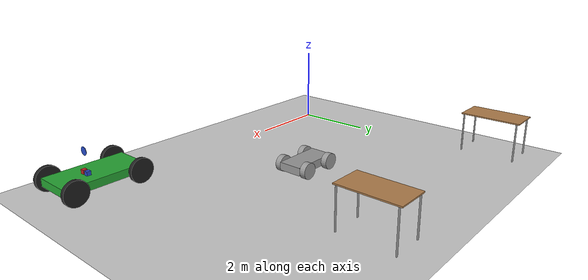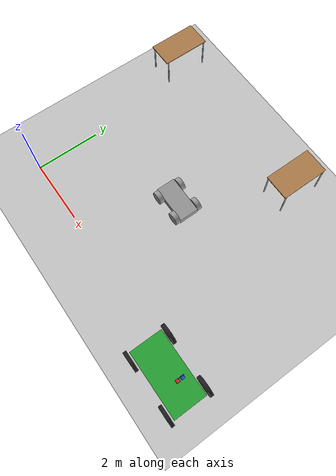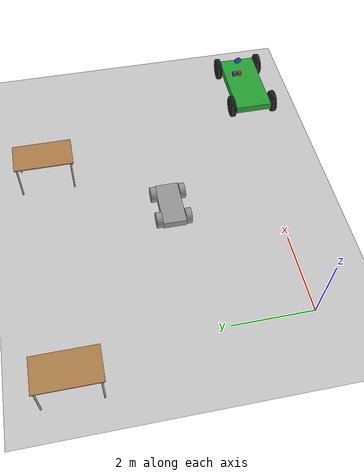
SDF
<sdf version="1.6">
 <world name="default">
  <model name="ground_plane">
   <static>1</static>
   <link name="link">
    <collision name="collision">
     <geometry><plane><normal>0 0 1</normal><size>100 100</size></plane></geometry>
     <surface>
      <contact><collide_bitmask>65535</collide_bitmask></contact>
      <friction><ode><mu>100</mu><mu2>50</mu2></ode></friction>
     </surface>
    </collision>
    <visual name="visual">
     <cast_shadows>0</cast_shadows>
     <geometry><plane><normal>0 0 1</normal><size>100 100</size></plane></geometry>
     <material>
      <script><uri>file://media/materials/scripts/gazebo.material</uri><name>Gazebo/Grey</name></script>
     </material>
    </visual>
   </link>
  </model>
  <model name="table">
   <static>1</static>
   <link name="link">
    <collision name="surface">
     <pose>0 0 1 0 -0 0</pose>
     <geometry><box><size>1.5 0.8 0.03</size></box></geometry>
     <surface><friction><ode><mu>0.6</mu><mu2>0.6</mu2></ode></friction></surface>
    </collision>
    <visual name="visual1">
     <pose>0 0 1 0 -0 0</pose>
     <geometry><box><size>1.5 0.8 0.03</size></box></geometry>
     <material>
      <script><uri>file://media/materials/scripts/gazebo.material</uri><name>Gazebo/Wood</name></script>
     </material>
    </visual>
    <collision name="front_left_leg">
     <pose>0.68 0.38 0.5 0 -0 0</pose>
     <geometry><cylinder><radius>0.02</radius><length>1</length></cylinder></geometry>
    </collision>
    <visual name="front_left_leg">
     <pose>0.68 0.38 0.5 0 -0 0</pose>
     <geometry><cylinder><radius>0.02</radius><length>1</length></cylinder></geometry>
     <material>
      <script><uri>file://media/materials/scripts/gazebo.material</uri><name>Gazebo/Grey</name></script>
     </material>
    </visual>
    <collision name="front_right_leg">
     <pose>0.68 -0.38 0.5 0 -0 0</pose>
     <geometry><cylinder><radius>0.02</radius><length>1</length></cylinder></geometry>
    </collision>
    <visual name="front_right_leg">
     <pose>0.68 -0.38 0.5 0 -0 0</pose>
     <geometry><cylinder><radius>0.02</radius><length>1</length></cylinder></geometry>
     <material>
      <script><uri>file://media/materials/scripts/gazebo.material</uri><name>Gazebo/Grey</name></script>
     </material>
    </visual>
    <collision name="back_right_leg">
     <pose>-0.68 -0.38 0.5 0 -0 0</pose>
     <geometry><cylinder><radius>0.02</radius><length>1</length></cylinder></geometry>
    </collision>
    <visual name="back_right_leg">
     <pose>-0.68 -0.38 0.5 0 -0 0</pose>
     <geometry><cylinder><radius>0.02</radius><length>1</length></cylinder></geometry>
     <material>
      <script><uri>file://media/materials/scripts/gazebo.material</uri><name>Gazebo/Grey</name></script>
     </material>
    </visual>
    <collision name="back_left_leg">
     <pose>-0.68 0.38 0.5 0 -0 0</pose>
     <geometry><cylinder><radius>0.02</radius><length>1</length></cylinder></geometry>
    </collision>
    <visual name="back_left_leg">
     <pose>-0.68 0.38 0.5 0 -0 0</pose>
     <geometry><cylinder><radius>0.02</radius><length>1</length></cylinder></geometry>
     <material>
      <script><uri>file://media/materials/scripts/gazebo.material</uri><name>Gazebo/Grey</name></script>
     </material>
    </visual>
   </link>
   <pose>4.98532 5.74806 0 0 -0 1.5708</pose>
  </model>
  <model name="table_0">
   <static>1</static>
   <link name="link">
    <collision name="surface">
     <pose>0 0 1 0 -0 0</pose>
     <geometry><box><size>1.5 0.8 0.03</size></box></geometry>
     <surface><friction><ode><mu>0.6</mu><mu2>0.6</mu2></ode></friction></surface>
    </collision>
    <visual name="visual1">
     <pose>0 0 1 0 -0 0</pose>
     <geometry><box><size>1.5 0.8 0.03</size></box></geometry>
     <material>
      <script><uri>file://media/materials/scripts/gazebo.material</uri><name>Gazebo/Wood</name></script>
     </material>
    </visual>
    <collision name="front_left_leg">
     <pose>0.68 0.38 0.5 0 -0 0</pose>
     <geometry><cylinder><radius>0.02</radius><length>1</length></cylinder></geometry>
    </collision>
    <visual name="front_left_leg">
     <pose>0.68 0.38 0.5 0 -0 0</pose>
     <geometry><cylinder><radius>0.02</radius><length>1</length></cylinder></geometry>
     <material>
      <script><uri>file://media/materials/scripts/gazebo.material</uri><name>Gazebo/Grey</name></script>
     </material>
    </visual>
    <collision name="front_right_leg">
     <pose>0.68 -0.38 0.5 0 -0 0</pose>
     <geometry><cylinder><radius>0.02</radius><length>1</length></cylinder></geometry>
    </collision>
    <visual name="front_right_leg">
     <pose>0.68 -0.38 0.5 0 -0 0</pose>
     <geometry><cylinder><radius>0.02</radius><length>1</length></cylinder></geometry>
     <material>
      <script><uri>file://media/materials/scripts/gazebo.material</uri><name>Gazebo/Grey</name></script>
     </material>
    </visual>
    <collision name="back_right_leg">
     <pose>-0.68 -0.38 0.5 0 -0 0</pose>
     <geometry><cylinder><radius>0.02</radius><length>1</length></cylinder></geometry>
    </collision>
    <visual name="back_right_leg">
     <pose>-0.68 -0.38 0.5 0 -0 0</pose>
     <geometry><cylinder><radius>0.02</radius><length>1</length></cylinder></geometry>
     <material>
      <script><uri>file://media/materials/scripts/gazebo.material</uri><name>Gazebo/Grey</name></script>
     </material>
    </visual>
    <collision name="back_left_leg">
     <pose>-0.68 0.38 0.5 0 -0 0</pose>
     <geometry><cylinder><radius>0.02</radius><length>1</length></cylinder></geometry>
    </collision>
    <visual name="back_left_leg">
     <pose>-0.68 0.38 0.5 0 -0 0</pose>
     <geometry><cylinder><radius>0.02</radius><length>1</length></cylinder></geometry>
     <material>
      <script><uri>file://media/materials/scripts/gazebo.material</uri><name>Gazebo/Grey</name></script>
     </material>
    </visual>
   </link>
   <pose>-0.681354 5.72212 0 0 -0 1.5708</pose>
  </model>
  <model name="robot_0">
   <link name="link_3">
    <pose>0 0 0.2 0 -0 0</pose>
    <inertial>
     <mass>1</mass>
     <inertia>
      <ixx>0.166667</ixx>
      <ixy>0</ixy>
      <ixz>0</ixz>
      <iyy>0.166667</iyy>
      <iyz>0</iyz>
      <izz>0.166667</izz>
     </inertia>
    </inertial>
    <visual name="visual">
     <geometry><box><size>1.2 0.6 0.2</size></box></geometry>
     <material>
      <lighting>1</lighting>
      <script><uri>file://media/materials/scripts/gazebo.material</uri><name>Gazebo/Grey</name></script>
      <shader type="pixel"><normal_map>__default__</normal_map></shader>
      <ambient>0.3 0.3 0.3 1</ambient>
      <diffuse>0.7 0.7 0.7 1</diffuse>
      <specular>0.01 0.01 0.01 1</specular>
      <emissive>0 0 0 1</emissive>
     </material>
    </visual>
    <collision name="collision">
     <geometry><box><size>1.2 0.6 0.2</size></box></geometry>
     <surface>
      <friction>
       <ode><mu>1</mu><mu2>1</mu2><fdir1>0 0 0</fdir1><slip1>0</slip1><slip2>0</slip2></ode>
       <torsional>
        <coefficient>1</coefficient>
        <patch_radius>0</patch_radius>
        <surface_radius>0</surface_radius>
        <use_patch_radius>1</use_patch_radius>
        <ode><slip>0</slip></ode>
       </torsional>
      </friction>
      <bounce><restitution_coefficient>0</restitution_coefficient><threshold>1e+06</threshold></bounce>
      <contact>
       <collide_without_contact>0</collide_without_contact>
       <collide_without_contact_bitmask>1</collide_without_contact_bitmask>
       <collide_bitmask>1</collide_bitmask>
       <ode>
        <soft_cfm>0</soft_cfm>
        <soft_erp>0.2</soft_erp>
        <kp>1e+13</kp>
        <kd>1</kd>
        <max_vel>0.01</max_vel>
        <min_depth>0</min_depth>
       </ode>
       <bullet>
        <split_impulse>1</split_impulse>
        <split_impulse_penetration_threshold>-0.01</split_impulse_penetration_threshold>
        <soft_cfm>0</soft_cfm>
        <soft_erp>0.2</soft_erp>
        <kp>1e+13</kp>
        <kd>1</kd>
       </bullet>
      </contact>
     </surface>
    </collision>
   </link>
   <link name="link_5_clone">
    <pose>-0.4 0.375001 0.2 1.5708 -0 0</pose>
    <inertial>
     <mass>1</mass>
     <inertia><ixx>0.145833</ixx><ixy>0</ixy><ixz>0</ixz><iyy>0.145833</iyy><iyz>0</iyz><izz>0.125</izz></inertia>
    </inertial>
    <visual name="visual">
     <geometry><cylinder><radius>0.2</radius><length>0.15</length></cylinder></geometry>
     <material>
      <lighting>1</lighting>
      <script><uri>file://media/materials/scripts/gazebo.material</uri><name>Gazebo/Grey</name></script>
      <shader type="pixel"><normal_map>__default__</normal_map></shader>
      <ambient>0.3 0.3 0.3 1</ambient>
      <diffuse>0.7 0.7 0.7 1</diffuse>
      <specular>0.01 0.01 0.01 1</specular>
      <emissive>0 0 0 1</emissive>
     </material>
    </visual>
    <collision name="collision">
     <geometry><cylinder><radius>0.2</radius><length>0.15</length></cylinder></geometry>
     <surface>
      <friction>
       <ode><mu>1</mu><mu2>1</mu2><fdir1>0 0 0</fdir1><slip1>0</slip1><slip2>0</slip2></ode>
       <torsional>
        <coefficient>1</coefficient>
        <patch_radius>0</patch_radius>
        <surface_radius>0</surface_radius>
        <use_patch_radius>1</use_patch_radius>
        <ode><slip>0</slip></ode>
       </torsional>
      </friction>
      <bounce><restitution_coefficient>0</restitution_coefficient><threshold>1e+06</threshold></bounce>
      <contact>
       <collide_without_contact>0</collide_without_contact>
       <collide_without_contact_bitmask>1</collide_without_contact_bitmask>
       <collide_bitmask>1</collide_bitmask>
       <ode>
        <soft_cfm>0</soft_cfm>
        <soft_erp>0.2</soft_erp>
        <kp>1e+13</kp>
        <kd>1</kd>
        <max_vel>0.01</max_vel>
        <min_depth>0</min_depth>
       </ode>
       <bullet>
        <split_impulse>1</split_impulse>
        <split_impulse_penetration_threshold>-0.01</split_impulse_penetration_threshold>
        <soft_cfm>0</soft_cfm>
        <soft_erp>0.2</soft_erp>
        <kp>1e+13</kp>
        <kd>1</kd>
       </bullet>
      </contact>
     </surface>
    </collision>
   </link>
   <link name="link_5_clone_0">
    <pose>-0.4 -0.375001 0.2 1.5708 -0 0</pose>
    <inertial>
     <mass>1</mass>
     <inertia><ixx>0.145833</ixx><ixy>0</ixy><ixz>0</ixz><iyy>0.145833</iyy><iyz>0</iyz><izz>0.125</izz></inertia>
    </inertial>
    <visual name="visual">
     <geometry><cylinder><radius>0.2</radius><length>0.15</length></cylinder></geometry>
     <material>
      <lighting>1</lighting>
      <script><uri>file://media/materials/scripts/gazebo.material</uri><name>Gazebo/Grey</name></script>
      <shader type="pixel"><normal_map>__default__</normal_map></shader>
      <ambient>0.3 0.3 0.3 1</ambient>
      <diffuse>0.7 0.7 0.7 1</diffuse>
      <specular>0.01 0.01 0.01 1</specular>
      <emissive>0 0 0 1</emissive>
     </material>
    </visual>
    <collision name="collision">
     <geometry><cylinder><radius>0.2</radius><length>0.15</length></cylinder></geometry>
     <surface>
      <friction>
       <ode><mu>1</mu><mu2>1</mu2><fdir1>0 0 0</fdir1><slip1>0</slip1><slip2>0</slip2></ode>
       <torsional>
        <coefficient>1</coefficient>
        <patch_radius>0</patch_radius>
        <surface_radius>0</surface_radius>
        <use_patch_radius>1</use_patch_radius>
        <ode><slip>0</slip></ode>
       </torsional>
      </friction>
      <bounce><restitution_coefficient>0</restitution_coefficient><threshold>1e+06</threshold></bounce>
      <contact>
       <collide_without_contact>0</collide_without_contact>
       <collide_without_contact_bitmask>1</collide_without_contact_bitmask>
       <collide_bitmask>1</collide_bitmask>
       <ode>
        <soft_cfm>0</soft_cfm>
        <soft_erp>0.2</soft_erp>
        <kp>1e+13</kp>
        <kd>1</kd>
        <max_vel>0.01</max_vel>
        <min_depth>0</min_depth>
       </ode>
       <bullet>
        <split_impulse>1</split_impulse>
        <split_impulse_penetration_threshold>-0.01</split_impulse_penetration_threshold>
        <soft_cfm>0</soft_cfm>
        <soft_erp>0.2</soft_erp>
        <kp>1e+13</kp>
        <kd>1</kd>
       </bullet>
      </contact>
     </surface>
    </collision>
   </link>
   <link name="link_5_clone_1">
    <pose>0.4 0.375001 0.2 1.5708 -0 0</pose>
    <inertial>
     <mass>1</mass>
     <inertia><ixx>0.145833</ixx><ixy>0</ixy><ixz>0</ixz><iyy>0.145833</iyy><iyz>0</iyz><izz>0.125</izz></inertia>
    </inertial>
    <visual name="visual">
     <geometry><cylinder><radius>0.2</radius><length>0.15</length></cylinder></geometry>
     <material>
      <lighting>1</lighting>
      <script><uri>file://media/materials/scripts/gazebo.material</uri><name>Gazebo/Grey</name></script>
      <shader type="pixel"><normal_map>__default__</normal_map></shader>
      <ambient>0.3 0.3 0.3 1</ambient>
      <diffuse>0.7 0.7 0.7 1</diffuse>
      <specular>0.01 0.01 0.01 1</specular>
      <emissive>0 0 0 1</emissive>
     </material>
    </visual>
    <collision name="collision">
     <geometry><cylinder><radius>0.2</radius><length>0.15</length></cylinder></geometry>
     <surface>
      <friction>
       <ode><mu>1</mu><mu2>1</mu2><fdir1>0 0 0</fdir1><slip1>0</slip1><slip2>0</slip2></ode>
       <torsional>
        <coefficient>1</coefficient>
        <patch_radius>0</patch_radius>
        <surface_radius>0</surface_radius>
        <use_patch_radius>1</use_patch_radius>
        <ode><slip>0</slip></ode>
       </torsional>
      </friction>
      <bounce><restitution_coefficient>0</restitution_coefficient><threshold>1e+06</threshold></bounce>
      <contact>
       <collide_without_contact>0</collide_without_contact>
       <collide_without_contact_bitmask>1</collide_without_contact_bitmask>
       <collide_bitmask>1</collide_bitmask>
       <ode>
        <soft_cfm>0</soft_cfm>
        <soft_erp>0.2</soft_erp>
        <kp>1e+13</kp>
        <kd>1</kd>
        <max_vel>0.01</max_vel>
        <min_depth>0</min_depth>
       </ode>
       <bullet>
        <split_impulse>1</split_impulse>
        <split_impulse_penetration_threshold>-0.01</split_impulse_penetration_threshold>
        <soft_cfm>0</soft_cfm>
        <soft_erp>0.2</soft_erp>
        <kp>1e+13</kp>
        <kd>1</kd>
       </bullet>
      </contact>
     </surface>
    </collision>
   </link>
   <link name="link_5_clone_2">
    <pose>0.4 -0.375001 0.2 1.5708 -0 0</pose>
    <inertial>
     <mass>1</mass>
     <inertia><ixx>0.145833</ixx><ixy>0</ixy><ixz>0</ixz><iyy>0.145833</iyy><iyz>0</iyz><izz>0.125</izz></inertia>
    </inertial>
    <visual name="visual">
     <geometry><cylinder><radius>0.2</radius><length>0.15</length></cylinder></geometry>
     <material>
      <lighting>1</lighting>
      <script><uri>file://media/materials/scripts/gazebo.material</uri><name>Gazebo/Grey</name></script>
      <shader type="pixel"><normal_map>__default__</normal_map></shader>
      <ambient>0.3 0.3 0.3 1</ambient>
      <diffuse>0.7 0.7 0.7 1</diffuse>
      <specular>0.01 0.01 0.01 1</specular>
      <emissive>0 0 0 1</emissive>
     </material>
    </visual>
    <collision name="collision">
     <geometry><cylinder><radius>0.2</radius><length>0.15</length></cylinder></geometry>
     <surface>
      <friction>
       <ode><mu>1</mu><mu2>1</mu2><fdir1>0 0 0</fdir1><slip1>0</slip1><slip2>0</slip2></ode>
       <torsional>
        <coefficient>1</coefficient>
        <patch_radius>0</patch_radius>
        <surface_radius>0</surface_radius>
        <use_patch_radius>1</use_patch_radius>
        <ode><slip>0</slip></ode>
       </torsional>
      </friction>
      <bounce><restitution_coefficient>0</restitution_coefficient><threshold>1e+06</threshold></bounce>
      <contact>
       <collide_without_contact>0</collide_without_contact>
       <collide_without_contact_bitmask>1</collide_without_contact_bitmask>
       <collide_bitmask>1</collide_bitmask>
       <ode>
        <soft_cfm>0</soft_cfm>
        <soft_erp>0.2</soft_erp>
        <kp>1e+13</kp>
        <kd>1</kd>
        <max_vel>0.01</max_vel>
        <min_depth>0</min_depth>
       </ode>
       <bullet>
        <split_impulse>1</split_impulse>
        <split_impulse_penetration_threshold>-0.01</split_impulse_penetration_threshold>
        <soft_cfm>0</soft_cfm>
        <soft_erp>0.2</soft_erp>
        <kp>1e+13</kp>
        <kd>1</kd>
       </bullet>
      </contact>
     </surface>
    </collision>
   </link>
   <joint name="link_3_JOINT_2" type="revolute">
    <parent>link_3</parent>
    <child>link_5_clone</child>
    <axis>
     <xyz>1 0 0</xyz>
     <use_parent_model_frame>0</use_parent_model_frame>
     <limit>
      <lower>-1.79769e+308</lower>
      <upper>1.79769e+308</upper>
      <effort>-1</effort>
      <velocity>-1</velocity>
     </limit>
     <dynamics>
      <spring_reference>0</spring_reference>
      <spring_stiffness>0</spring_stiffness>
      <damping>0</damping>
     </dynamics>
    </axis>
    <physics>
     <ode><limit><cfm>0</cfm><erp>0.2</erp></limit><suspension><cfm>0</cfm><erp>0.2</erp></suspension></ode>
    </physics>
   </joint>
   <joint name="link_3_JOINT_3" type="revolute">
    <parent>link_3</parent>
    <child>link_5_clone_0</child>
    <axis>
     <xyz>1 0 0</xyz>
     <use_parent_model_frame>0</use_parent_model_frame>
     <limit>
      <lower>-1.79769e+308</lower>
      <upper>1.79769e+308</upper>
      <effort>-1</effort>
      <velocity>-1</velocity>
     </limit>
     <dynamics>
      <spring_reference>0</spring_reference>
      <spring_stiffness>0</spring_stiffness>
      <damping>0</damping>
     </dynamics>
    </axis>
    <physics>
     <ode><limit><cfm>0</cfm><erp>0.2</erp></limit><suspension><cfm>0</cfm><erp>0.2</erp></suspension></ode>
    </physics>
   </joint>
   <joint name="link_3_JOINT_4" type="revolute">
    <parent>link_3</parent>
    <child>link_5_clone_1</child>
    <axis>
     <xyz>1 0 0</xyz>
     <use_parent_model_frame>0</use_parent_model_frame>
     <limit>
      <lower>-1.79769e+308</lower>
      <upper>1.79769e+308</upper>
      <effort>-1</effort>
      <velocity>-1</velocity>
     </limit>
     <dynamics>
      <spring_reference>0</spring_reference>
      <spring_stiffness>0</spring_stiffness>
      <damping>0</damping>
     </dynamics>
    </axis>
    <physics>
     <ode><limit><cfm>0</cfm><erp>0.2</erp></limit><suspension><cfm>0</cfm><erp>0.2</erp></suspension></ode>
    </physics>
   </joint>
   <joint name="link_3_JOINT_5" type="revolute">
    <parent>link_3</parent>
    <child>link_5_clone_2</child>
    <axis>
     <xyz>1 0 0</xyz>
     <use_parent_model_frame>0</use_parent_model_frame>
     <limit>
      <lower>-1.79769e+308</lower>
      <upper>1.79769e+308</upper>
      <effort>-1</effort>
      <velocity>-1</velocity>
     </limit>
     <dynamics>
      <spring_reference>0</spring_reference>
      <spring_stiffness>0</spring_stiffness>
      <damping>0</damping>
     </dynamics>
    </axis>
    <physics>
     <ode><limit><cfm>0</cfm><erp>0.2</erp></limit><suspension><cfm>0</cfm><erp>0.2</erp></suspension></ode>
    </physics>
   </joint>
   <static>0</static>
   <pose>3.4053 2.71957 0 0 -0 0.000101</pose>
  </model>
  <model name="car">
   <link name="chassis">
    <pose>0 0 0.3 0 -0 0</pose>
    <collision name="collision"><geometry><box><size>2 1 0.2</size></box></geometry></collision>
    <visual name="visual">
     <geometry><box><size>2 1 0.2</size></box></geometry>
     <material>
      <script><uri>file://media/materials/scripts/gazebo.material</uri><name>Gazebo/Green</name></script>
     </material>
    </visual>
    <inertial>
     <inertia><ixx>1</ixx><ixy>0</ixy><ixz>0</ixz><iyy>1</iyy><iyz>0</iyz><izz>1</izz></inertia>
     <mass>1</mass>
    </inertial>
   </link>
   <link name="front_left_wheel">
    <pose>0.8 0.6 0.3 -0 1.5707 1.5707</pose>
    <collision name="collision">
     <geometry><cylinder><radius>0.3</radius><length>0.1</length></cylinder></geometry>
    </collision>
    <visual name="visual">
     <geometry><cylinder><radius>0.3</radius><length>0.1</length></cylinder></geometry>
     <material>
      <script><uri>file://media/materials/scripts/gazebo.material</uri><name>Gazebo/Black</name></script>
     </material>
    </visual>
    <inertial>
     <inertia><ixx>1</ixx><ixy>0</ixy><ixz>0</ixz><iyy>1</iyy><iyz>0</iyz><izz>1</izz></inertia>
     <mass>1</mass>
    </inertial>
   </link>
   <link name="front_right_wheel">
    <pose>0.8 -0.6 0.3 -0 1.5707 1.5707</pose>
    <collision name="collision">
     <geometry><cylinder><radius>0.3</radius><length>0.1</length></cylinder></geometry>
    </collision>
    <visual name="visual">
     <geometry><cylinder><radius>0.3</radius><length>0.1</length></cylinder></geometry>
     <material>
      <script><uri>file://media/materials/scripts/gazebo.material</uri><name>Gazebo/Black</name></script>
     </material>
    </visual>
    <inertial>
     <inertia><ixx>1</ixx><ixy>0</ixy><ixz>0</ixz><iyy>1</iyy><iyz>0</iyz><izz>1</izz></inertia>
     <mass>1</mass>
    </inertial>
   </link>
   <link name="back_right_wheel">
    <pose>-0.8 -0.6 0.3 -0 1.5707 1.5707</pose>
    <collision name="collision">
     <geometry><cylinder><radius>0.3</radius><length>0.1</length></cylinder></geometry>
    </collision>
    <visual name="visual">
     <geometry><cylinder><radius>0.3</radius><length>0.1</length></cylinder></geometry>
     <material>
      <script><uri>file://media/materials/scripts/gazebo.material</uri><name>Gazebo/Black</name></script>
     </material>
    </visual>
    <inertial>
     <inertia><ixx>1</ixx><ixy>0</ixy><ixz>0</ixz><iyy>1</iyy><iyz>0</iyz><izz>1</izz></inertia>
     <mass>1</mass>
    </inertial>
   </link>
   <link name="back_left_wheel">
    <pose>-0.8 0.6 0.3 -0 1.5707 1.5707</pose>
    <collision name="collision">
     <geometry><cylinder><radius>0.3</radius><length>0.1</length></cylinder></geometry>
    </collision>
    <visual name="visual">
     <geometry><cylinder><radius>0.3</radius><length>0.1</length></cylinder></geometry>
     <material>
      <script><uri>file://media/materials/scripts/gazebo.material</uri><name>Gazebo/Black</name></script>
     </material>
    </visual>
    <inertial>
     <inertia><ixx>1</ixx><ixy>0</ixy><ixz>0</ixz><iyy>1</iyy><iyz>0</iyz><izz>1</izz></inertia>
     <mass>1</mass>
    </inertial>
   </link>
   <link name="gas_pedal">
    <pose>0.3 0.1 0.5 0 -0 0</pose>
    <collision name="collision"><geometry><box><size>0.1 0.1 0.1</size></box></geometry></collision>
    <visual name="visual">
     <geometry><box><size>0.1 0.1 0.1</size></box></geometry>
     <material>
      <script><uri>file://media/materials/scripts/gazebo.material</uri><name>Gazebo/Red</name></script>
     </material>
    </visual>
    <inertial>
     <inertia><ixx>1</ixx><ixy>0</ixy><ixz>0</ixz><iyy>1</iyy><iyz>0</iyz><izz>1</izz></inertia>
     <mass>1</mass>
    </inertial>
   </link>
   <link name="brake_pedal">
    <pose>0.3 0.25 0.5 0 -0 0</pose>
    <collision name="collision"><geometry><box><size>0.1 0.1 0.1</size></box></geometry></collision>
    <visual name="visual">
     <geometry><box><size>0.1 0.1 0.1</size></box></geometry>
     <material>
      <script><uri>file://media/materials/scripts/gazebo.material</uri><name>Gazebo/Blue</name></script>
     </material>
    </visual>
    <inertial>
     <inertia><ixx>1</ixx><ixy>0</ixy><ixz>0</ixz><iyy>1</iyy><iyz>0</iyz><izz>1</izz></inertia>
     <mass>1</mass>
    </inertial>
   </link>
   <link name="steering_wheel">
    <pose>0.3 0.2 1 0 1.5707 0</pose>
    <collision name="collision">
     <geometry><cylinder><radius>0.1</radius><length>0.01</length></cylinder></geometry>
    </collision>
    <visual name="visual">
     <geometry><cylinder><radius>0.1</radius><length>0.01</length></cylinder></geometry>
     <material>
      <script><uri>file://media/materials/scripts/gazebo.material</uri><name>Gazebo/Blue</name></script>
     </material>
    </visual>
    <inertial>
     <inertia><ixx>1</ixx><ixy>0</ixy><ixz>0</ixz><iyy>1</iyy><iyz>0</iyz><izz>1</izz></inertia>
     <mass>1</mass>
    </inertial>
   </link>
   <joint name="gas_joint" type="prismatic">
    <parent>chassis</parent>
    <child>gas_pedal</child>
    <axis>
     <xyz>1 0 0</xyz>
     <limit><lower>0</lower><upper>0.2</upper></limit>
     <use_parent_model_frame>1</use_parent_model_frame>
     <dynamics><spring_reference>0</spring_reference><spring_stiffness>0</spring_stiffness></dynamics>
    </axis>
   </joint>
   <joint name="brake_joint" type="prismatic">
    <parent>chassis</parent>
    <child>brake_pedal</child>
    <axis>
     <xyz>1 0 0</xyz>
     <limit><lower>0</lower><upper>0.2</upper></limit>
     <use_parent_model_frame>1</use_parent_model_frame>
     <dynamics><spring_reference>0</spring_reference><spring_stiffness>0</spring_stiffness></dynamics>
    </axis>
   </joint>
   <joint name="steering_joint" type="revolute">
    <parent>chassis</parent>
    <child>steering_wheel</child>
    <axis>
     <xyz>1 0 0</xyz>
     <limit><lower>-7.853</lower><upper>7.853</upper></limit>
     <use_parent_model_frame>1</use_parent_model_frame>
     <dynamics><spring_reference>0</spring_reference><spring_stiffness>0</spring_stiffness></dynamics>
    </axis>
   </joint>
   <joint name="front_left_joint" type="revolute2">
    <parent>chassis</parent>
    <child>front_left_wheel</child>
    <axis>
     <xyz>0 0 1</xyz>
     <limit><lower>8.69767e-06</lower><upper>8.69767e-06</upper></limit>
     <use_parent_model_frame>1</use_parent_model_frame>
     <dynamics><spring_reference>0</spring_reference><spring_stiffness>0</spring_stiffness></dynamics>
    </axis>
    <axis2>
     <xyz>0 1 0</xyz>
     <use_parent_model_frame>1</use_parent_model_frame>
     <dynamics><spring_reference>0</spring_reference><spring_stiffness>0</spring_stiffness></dynamics>
    </axis2>
    <physics><ode><limit><cfm>0</cfm><erp>0.9</erp></limit></ode></physics>
   </joint>
   <joint name="front_right_joint" type="revolute2">
    <parent>chassis</parent>
    <child>front_right_wheel</child>
    <axis>
     <xyz>0 0 1</xyz>
     <limit><lower>8.69767e-06</lower><upper>8.69767e-06</upper></limit>
     <use_parent_model_frame>1</use_parent_model_frame>
     <dynamics><spring_reference>0</spring_reference><spring_stiffness>0</spring_stiffness></dynamics>
    </axis>
    <axis2>
     <xyz>0 1 0</xyz>
     <use_parent_model_frame>1</use_parent_model_frame>
     <dynamics><spring_reference>0</spring_reference><spring_stiffness>0</spring_stiffness></dynamics>
    </axis2>
    <physics><ode><limit><cfm>0</cfm><erp>0.9</erp></limit></ode></physics>
   </joint>
   <joint name="back_right_joint" type="revolute2">
    <parent>chassis</parent>
    <child>back_right_wheel</child>
    <axis>
     <xyz>0 0 1</xyz>
     <limit><lower>0</lower><upper>0</upper></limit>
     <use_parent_model_frame>1</use_parent_model_frame>
     <dynamics><spring_reference>0</spring_reference><spring_stiffness>0</spring_stiffness></dynamics>
    </axis>
    <axis2>
     <xyz>0 1 0</xyz>
     <use_parent_model_frame>1</use_parent_model_frame>
     <dynamics><spring_reference>0</spring_reference><spring_stiffness>0</spring_stiffness></dynamics>
    </axis2>
    <physics><ode><limit><cfm>0</cfm><erp>0.9</erp></limit></ode></physics>
   </joint>
   <joint name="back_left_joint" type="revolute2">
    <parent>chassis</parent>
    <child>back_left_wheel</child>
    <axis>
     <xyz>0 0 1</xyz>
     <limit><lower>0</lower><upper>0</upper></limit>
     <use_parent_model_frame>1</use_parent_model_frame>
     <dynamics><spring_reference>0</spring_reference><spring_stiffness>0</spring_stiffness></dynamics>
    </axis>
    <axis2>
     <xyz>0 1 0</xyz>
     <use_parent_model_frame>1</use_parent_model_frame>
     <dynamics><spring_reference>0</spring_reference><spring_stiffness>0</spring_stiffness></dynamics>
    </axis2>
    <physics><ode><limit><cfm>0</cfm><erp>0.9</erp></limit></ode></physics>
   </joint>
   <plugin name="vehicle" filename="libVehiclePlugin.so">
    <front_left>front_left_joint</front_left>
    <front_right>front_right_joint</front_right>
    <back_left>back_left_joint</back_left>
    <back_right>back_right_joint</back_right>
    <gas>gas_joint</gas>
    <brake>brake_joint</brake>
    <steering>steering_joint</steering>
    <front_power>10</front_power>
    <rear_power>10</rear_power>
    <tire_angle_range>0.5</tire_angle_range>
    <max_speed>10</max_speed>
    <aero_load>0.1</aero_load>
   </plugin>
   <pose>7.21492 -0.307635 -0.002616 -0.000273 0.000907 0.000829</pose>
  </model>
 </world>
</sdf>
